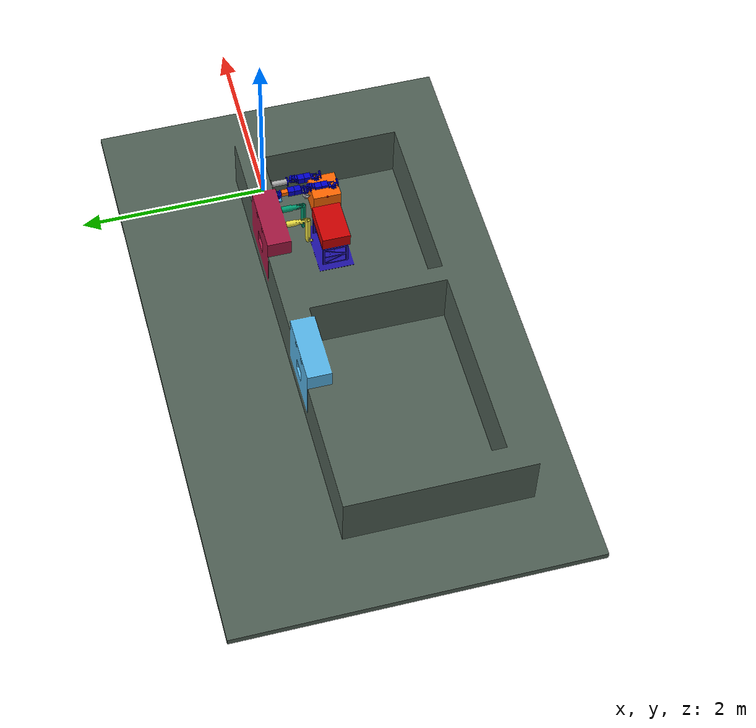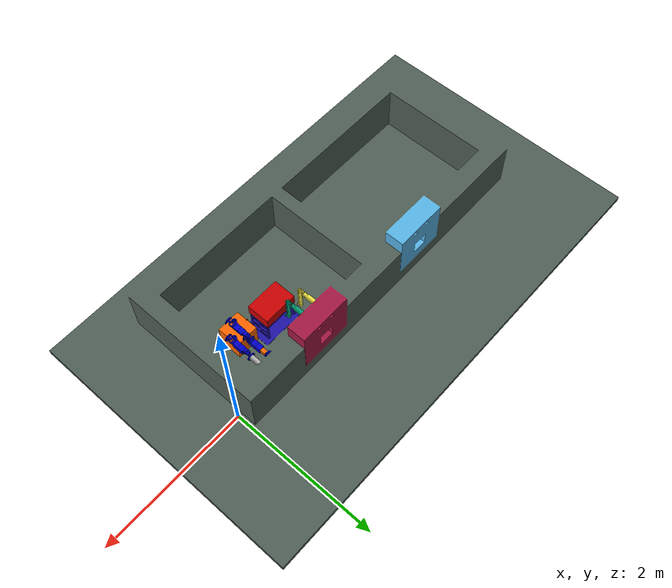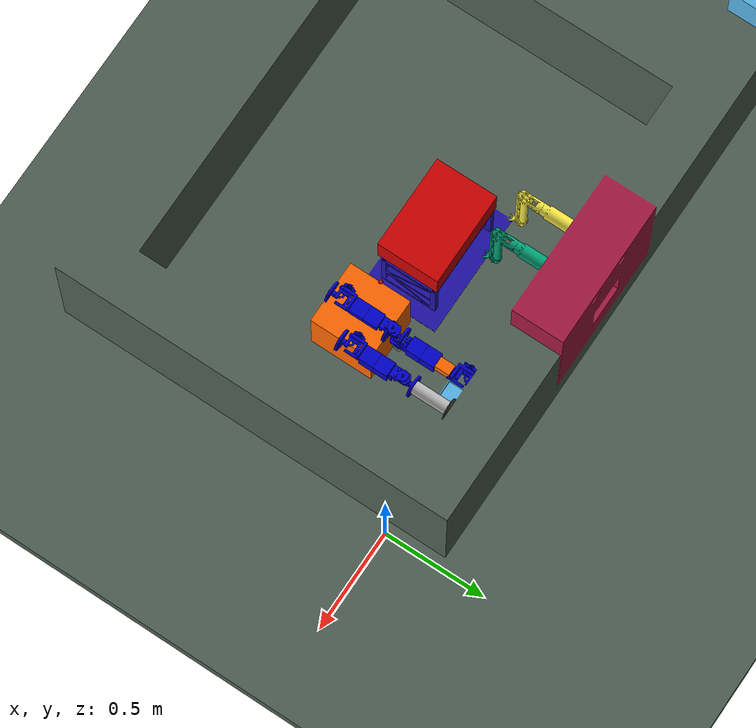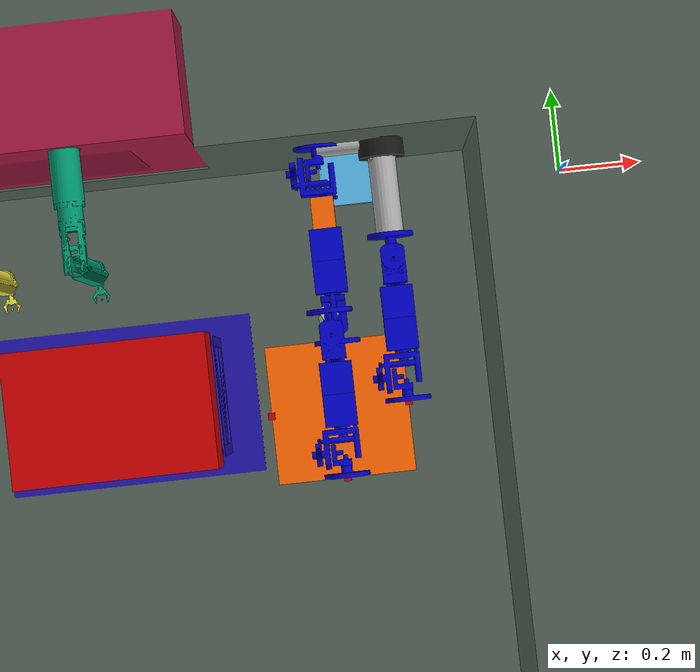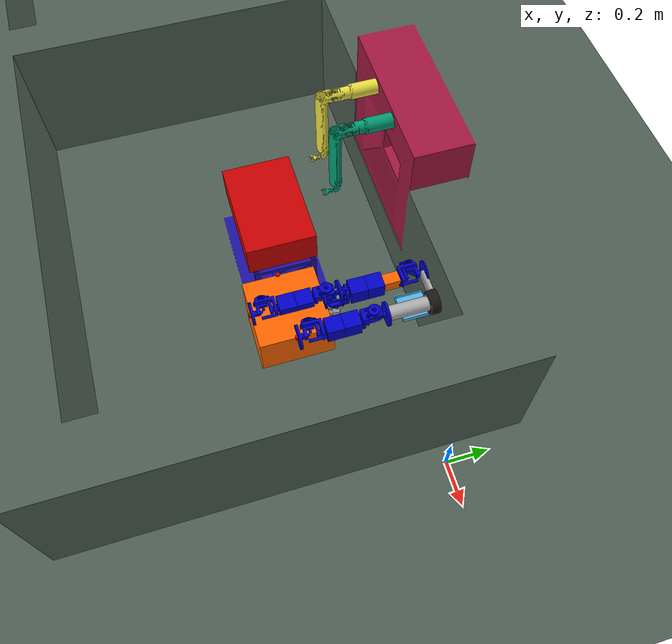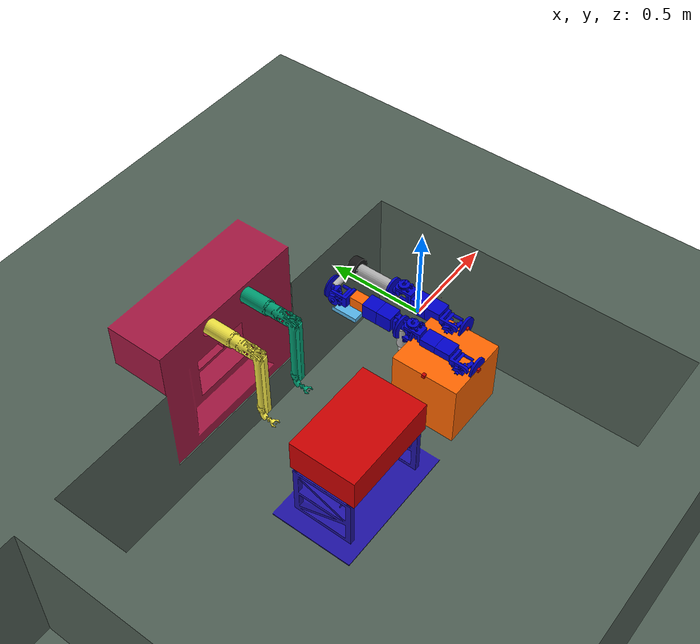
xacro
<?xml version="1.0"?>
<robot name="power" xmlns:xacro="http://www.ros.org/wiki/xacro">

  <!-- The following included files set up definitions of parts of the robot body -->

  <!-- power base -->
  <xacro:include filename="$(find mrs_description)/urdf/power_base/base.urdf.xacro" />
<xacro:include filename="$(find mrs_description)/urdf/power_base/ball_bearing.urdf.xacro" />
    <!-- constants for robot -->
<xacro:include filename="$(find mrs_description)/urdf/common_mrs.xacro" />
  <!-- simplified box collision geometry for base -->
<xacro:include filename="$(find
mrs_description)/urdf/power_base/sm_other.urdf.xacro" />
    <!-- Constants for robot -->
    <xacro:include filename="$(find mrs_description)/urdf/JM/jm.xacro" />
    <xacro:include filename="$(find mrs_description)/urdf/PCM/pcm.xacro" />
  <!-- Now we can start using the macros included above to define the actual power -->

<!--
THe Hotcell import
-->
  <link name="world" >
    <inertial>
        <mass value="0.1"/>
        <origin xyz="0 0 0" rpy="0 0 0"/>
        <inertia ixx="1.0" ixy="0.0" ixz="0.0" iyy="1.0" iyz="0.0" izz="1.0"/>
      </inertial>
      <visual>
        <origin xyz="0 0 0" rpy="0 0 0"/>
        <geometry>
          <box size="0.001 0.001 0.001"/>
        </geometry>
        <material name="Red"/>
      </visual>
      <collision>
        <origin xyz="0 0 0" rpy="0 0 0"/>
        <geometry>
          <box size="0.001 0.001 0.001"/>
        </geometry>
      </collision>
    </link>
  <link name="link_hotcell">
        <!--> Not necessary to declare inertia as the body is static<-->
      <collision name="collision_hotcell">
        <geometry>
            <mesh filename="package://mrs_gazebo/models/Hotcell/meshes/Hotcell.dae" scale="2.5 2.5 2.5"/>
        </geometry>
      </collision>
      <visual name="visual_hotcell">
        <geometry>
           <mesh filename="package://mrs_gazebo/models/Hotcell/meshes/Hotcell.dae" scale="2.5 2.5 2.5"/>
        </geometry>
      </visual>
    </link>
    <link name="link_manipulator_1">
        <!--> Not necessary to declare inertia as the body is static<-->

      <collision name="collision_man1">

        <geometry>
           <mesh filename="package://mrs_gazebo/models/MT200_nuc_manipulator/meshes/Manipulator.dae" scale="0.25 0.25 0.25"/>
        </geometry>
      </collision>
      <visual name="visual_man1">
        <geometry>
           <mesh filename="package://mrs_gazebo/models/MT200_nuc_manipulator/meshes/Manipulator.dae" scale="0.250 0.25 0.25"/>
        </geometry>
      </visual>
    </link>
     <link name="link_manipulator_2">
        <!--> Not necessary to declare inertia as the body is static<-->

      <collision name="collision_man2">
        <geometry>
           <mesh filename="package://mrs_gazebo/models/MT200_nuc_manipulator/meshes/Manipulator.dae" scale="0.25 0.25 0.25"/>
        </geometry>
      </collision>
      <visual name="visual_man2">
        <geometry>
           <mesh filename="package://mrs_gazebo/models/MT200_nuc_manipulator/meshes/Manipulator.dae" scale="0.25 0.25 0.25"/>
        </geometry>
      </visual>
    </link>

    <link name="manipable_box">

      <visual name="box_visual">
        <geometry>
            <box size="0.45 0.30 0.15"/>
        </geometry>
              <material name="red"/>
      </visual>
    </link>
<joint name="fixed_hotcell_joint" type="fixed">
    <origin xyz="0 0.05 0" rpy="0 0 0"/>
    <child link="link_hotcell"/>
    <parent link="world"/>
  </joint>
    <joint name="fixed_manipulator_joint1" type="fixed">
    <origin xyz="-1.13 -0.075 0.345" rpy="0 0 0"/>
    <child link="link_manipulator_1"/>
    <parent link="link_hotcell"/>
  </joint>
<joint name="fixed_manipulator_joint2" type="fixed">
    <origin xyz="-1.325 -0.075 0.345" rpy="0 0 0"/>
    <child link="link_manipulator_2"/>
    <parent link="link_hotcell"/>
  </joint>
   <joint name="fixed_maniBox_joint1" type="fixed">
    <origin xyz="-1.1 -0.525 0.6" rpy="0 0 0"/>
    <child link="manipable_box"/>
    <parent link="link_hotcell"/>
  </joint>
  <!-- inspection robot-->
  <!-- foot for arm-->

    <link name="robot1" >
    </link>
<joint name="fixed_robot1" type="fixed">
    <origin xyz="-0.6 -0.525 0.5" rpy="0 0 0"/>
    <child link="robot1"/>
    <parent link="world"/>
  </joint>
  <xacro:power_base name="base1" parent="robot1"/>

<!--
          Create the orientation joint

-->
<!--
ARM 1
-->
        <link name="arm1" />

<joint name="arm1_joint" type="revolute">
    <origin xyz="0 0 0" rpy="0 ${pi/2} 0"/>
    <child link="arm1"/>
    <parent link="2_base_camera_link"/>
     <limit lower="0" upper="3" effort="${max_effort}"
      velocity="${max_velocity}" />
  </joint>
  <link name="arm1_1" />
  <joint name="arm12_joint" type="revolute">
    <origin xyz="0 0 0" rpy="0 0 ${pi/2}"/>
    <child link="arm1_1"/>
    <parent link="arm1"/>
     <limit lower="${-pi}" upper="${pi}" effort="${max_effort}"
      velocity="${max_velocity}" />
  </joint>
    <xacro:JM1_armconnect name="JM" prefix="L2" instance="1"  parent="arm1_1" />
    <xacro:PcModule parent="L21_PCmodule" prefix="L22" instance="2" />
    <xacro:PcModule parent="1_L2_j2_link" prefix="L21" instance="1" />
    <xacro:PcModule_Prismatic_arm parent="L22_PCmodule" prefix="L2_prismatic" reflect="1" shift="0.07"/>
    <xacro:JM2 name="JM1" prefix="L2" instance="2"  parent="L2_prismatic_PCmodule" reflect="1" shift="0.035" shift2="0"/>

    <xacro:SMHand parent="2_L2_w1_link" prefix="L2" reflect="1" instance="1"/>

<!--
ARM 2
-->
        <link name="arm2" />

<joint name="arm2_joint" type="revolute">
    <origin xyz="0 0 0" rpy="0 ${pi/2} 0"/>
    <child link="arm2"/>
    <parent link="4_base_camera_link"/>
     <limit lower="${-pi}" upper="${pi}" effort="${max_effort}"
      velocity="${max_velocity}" />
  </joint>
  <link name="arm2_1" />
  <joint name="arm22_joint" type="revolute">
    <origin xyz="0 0 0" rpy="0 0 ${pi/2}"/>
    <child link="arm2_1"/>
    <parent link="arm2"/>
     <limit lower="${-pi}" upper="${pi}" effort="${max_effort}"
      velocity="${max_velocity}" />
  </joint>
    <link name="arm2_2" />
  <joint name="arm23_joint" type="revolute">
    <origin xyz="0 0 0" rpy="0 ${pi/2} 0"/>
    <child link="arm2_2"/>
    <parent link="arm2_1"/>
     <limit lower="${-pi}" upper="${pi}" effort="${max_effort}"
      velocity="${max_velocity}" />
  </joint>

    <xacro:JM1 name="JM" prefix="L1" instance="1"  parent="arm2_2" />
    <xacro:PcModule parent="L11_PCmodule" prefix="L12" instance="2" />
    <xacro:PcModule parent="1_L1_j2_link" prefix="L11" instance="1" />
    <xacro:JM2 name="JM1" prefix="L1" instance="2"  parent="L12_PCmodule" reflect="0" shift="0.035" shift2="1"/>
    <xacro:SMHand parent="2_L1_w1_link" prefix="L1" reflect="1" instance="2"/>

<!--
    ARM3 - parent {instance}_${prefix}_camera_link
-->
        <link name="arm3" />

<joint name="arm3_joint" type="revolute">
    <origin xyz="0 0 0" rpy="0 ${pi/2} 0"/>
    <child link="arm3"/>
    <parent link="1_base_camera_link"/>
     <limit lower="${-pi}" upper="${pi}" effort="${max_effort}"
      velocity="${max_velocity}" />
  </joint>
  <link name="arm3_1" />
  <joint name="arm32_joint" type="revolute">
    <origin xyz="0 0 0" rpy="0 0 ${pi/2}"/>
    <child link="arm3_1"/>
    <parent link="arm3"/>
     <limit lower="${-pi}" upper="${pi}" effort="${max_effort}"
      velocity="${max_velocity}" />
  </joint>
    <link name="arm3_2" />
  <joint name="arm33_joint" type="revolute">
    <origin xyz="0 0 0" rpy="0 ${pi/2} 0"/>
    <child link="arm3_2"/>
    <parent link="arm3_1"/>
     <limit lower="${-pi}" upper="${pi}" effort="${max_effort}"
      velocity="${max_velocity}" />
  </joint>

    <xacro:JM1 name="JM" prefix="L3" instance="1"  parent="arm3_2" />
    <xacro:PcModule parent="L31_PCmodule" prefix="L32" instance="2" />
    <xacro:PcModule parent="1_L3_j2_link" prefix="L31" instance="1" />
    <xacro:JM2 name="JM1" prefix="L3" instance="2"  parent="L32_PCmodule" reflect="0" shift="0.035" shift2="1"/>
     <xacro:SMRadprobe parent="2_L3_w1_link" prefix="L3" reflect="0" instance="1" />

  <gazebo>
    <plugin name="gazebo_ros_controller_manager" filename="libgazebo_ros_control.so">
      <robotNamespace>/mrs</robotNamespace>
    </plugin>

    <plugin name="object_controller" filename="libgazebo_ros_planar_move.so">
      <commandTopic>/mrs/cmd_vel</commandTopic>
      <odometryTopic>odom</odometryTopic>
      <odometryFrame>odom</odometryFrame>
      <odometryRate>20.0</odometryRate>
      <robotBaseFrame>base_footprint</robotBaseFrame>
    </plugin>

  </gazebo>

</robot>

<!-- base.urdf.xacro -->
<robot xmlns:xacro="http://www.ros.org/wiki/xacro">

  <property name="mass" value="22.0"/>
  <property name="p_baselen" value=".3" />
  <property name="p_basewidth" value=".3" />
  <property name="p_baseheight" value=".3" />

  <xacro:macro name="power_base" params="name parent">
  <link name="${name}_footprint">
    <inertial>
      <mass value="0.1"/>
      <origin xyz="0 0 ${-p_baseheight/2}" rpy="0 0 0"/>
      <inertia ixx="1.0" ixy="0.0" ixz="0.0" iyy="1.0" iyz="0.0" izz="1.0"/>
    </inertial>
    <visual>
      <origin xyz="-2.2 0 0" rpy="0 0 0"/>
      <geometry>
        <box size="0.001 0.001 0.001"/>
      </geometry>
      <material name="red"/>
    </visual>
    <collision>
      <origin xyz="0 0 ${-p_baseheight/2}" rpy="0 0 0"/>
      <geometry>
        <box size="0.001 0.001 0.001"/>
      </geometry>
    </collision>
  </link>
  <joint name="${name}_footprint" type="fixed">
    <origin xyz="0 0 0" rpy="0 0 0"/>
    <child link="${name}_footprint"/>
    <parent link="${parent}"/>
  </joint>
  <joint name="${name}_footprint_joint" type="fixed">
    <origin xyz="0 0 0" rpy="0 0 0"/>
    <child link="${name}_link_support"/>
    <parent link="${name}_footprint"/>
  </joint>

  <link name="${name}_link_support">
    <visual>
      <geometry>
        <box size="${p_baselen} ${p_basewidth} ${p_baseheight}" />
      </geometry>
      <material name="Orange"/>
    </visual>
    <collision>
      <geometry>
        <box size="${p_baselen-0.1} ${p_basewidth-0.05} ${p_baseheight-0.05}" />
      </geometry>
    </collision>
    <xacro:default_inertial mass="2" I_tensor="1"/>
  </link>

  <gazebo reference="${name}_link_support">
    <material>Gazebo/Orange</material>
  </gazebo>

<xacro:Ball_bearing mass="0.1" instance="1" dia="0.1" x="0.075" y="0.075" z="-0.12" parent="${name}_link_support"/>
<xacro:Ball_bearing mass="0.1" instance="2" dia="0.1" x="-0.075" y="0.075" z="-0.12" parent="${name}_link_support"/>
<xacro:Ball_bearing mass="0.1" instance="3" dia="0.1" x="0.075" y="-0.075" z="-0.12" parent="${name}_link_support"/>
<xacro:Ball_bearing mass="0.1" instance="4" dia="0.1" x="-0.075" y="-0.075" z="-0.12" parent="${name}_link_support"/>

<xacro:Camera parent="${name}_link_support" prefix="base" x="0.15" y="0" z="0.15" instance="1" />
<xacro:Camera parent="${name}_link_support" prefix="base" x="0" y="0.15" z="0.15" instance="2" />
<xacro:Camera parent="${name}_link_support" prefix="base" x="-0.15" y="0" z="0.15" instance="3" />
<xacro:Camera parent="${name}_link_support" prefix="base" x="0" y="-0.15" z="0.15" instance="4" />

<xacro:IMU parent="${name}_link_support" prefix="base" x="0.1" y="0.1" z="0.31"  />
  </xacro:macro>

</robot>

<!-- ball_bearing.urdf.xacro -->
<robot xmlns:xacro="http://www.ros.org/wiki/xacro">

		<!-- Constants for robot -->
	<xacro:include filename="$(find mrs_description)/urdf/common_mrs.xacro" />
  <!-- simplified box collision geometry for base -->

  <property name="mass" value="22.0"/>

 <macro name="Ball_bearing" params="mass instance dia x y z parent">
  <joint name="bearing_joint_${instance}" type="fixed">
    <origin rpy="0 0 0" xyz="${x} ${y} ${z}"/>
    <parent link="${parent}"/>
    <child link="bearing_link1_${instance}"/>
  </joint>
  <link name="bearing_link1_${instance}">
    <inertial>
      <mass value="${mass}"/>
      <origin xyz="0 0 0"/>
      <inertia ixx="${2/5*mass*dia/2*dia/2}" ixy="0" ixz="0" iyy="${2/5*mass*dia/2*dia/2}" iyz="0" izz="${2/5*mass*dia/2*dia/2}"/>
    </inertial>

  </link>
   <link name="bearing_link2_${instance}">
      <inertial>
        <mass value="${mass}"/>
        <origin xyz="0 0 0"/>
        <inertia ixx="${2/5*mass*dia/2*dia/2}" ixy="0" ixz="0" iyy="${2/5*mass*dia/2*dia/2}" iyz="0" izz="${2/5*mass*dia/2*dia/2}"/>
      </inertial>
      <visual>
      <origin rpy="0 0 0" xyz="0 0 0"/>
      <geometry>
        <sphere radius="${dia/2}"/>
      </geometry>
      <material name="Orange"/>
    </visual>
    <collision>
      <origin rpy="0 0 0" xyz="0 0 0"/>
      <geometry>
        <sphere radius="${dia/2}"/>
      </geometry>
      <contact_coefficients> <mu>0.0</mu> </contact_coefficients>
    </collision>
    </link>
      <joint name="bearing_joint2_${instance}" type="fixed">
    <origin rpy="0 0 0" xyz="0 0 0"/>
    <parent link="bearing_link1_${instance}"/>
    <child link="bearing_link2_${instance}"/>
  </joint>

  	<gazebo reference="bearing_link1_${instance}">
		<material>Gazebo/Black</material>
		<selfCollide>false</selfCollide>
	</gazebo>
	<gazebo reference="bearing_link2_${instance}">
		<material>Gazebo/Black</material>
		<selfCollide>false</selfCollide>
	</gazebo>

	</macro>
	</robot>

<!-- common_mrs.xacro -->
<robot name="mrs" xmlns:xacro="http://www.ros.org/wiki/xacro">

	<!-- Auxiliar Values -->
	<property name="pi" value="3.1415926535897931" />
	<property name="max_effort" value="20" />
	<property name="max_velocity" value="10" />

	<!-- Links Mass -->
	<property name="j1_mass" value="0.137" />
	<property name="j2_mass" value="0.01" />
	<property name="j3_mass" value="0.027" />
	<property name="w1_mass" value="0.089" />
	<property name="pc_mass" value="0.249" />

	<!-- Links COG -->
	<property name="j1_cog" value="-0.024 -0.021 0" />
	<property name="j2_cog" value="1.068e-4 0 4.22e-4" />
	<property name="j3_cog" value="-5.121e-4 0.014 -0.012" />
	<property name="w1_cog" value="-0.003 0 0" />
	<property name="pc_cog" value="-0.034 0 0" />

	<!-- Links Inertia -->
	<macro name="j1_inertia">
		<inertia ixx="1.043e-4" ixy="4.237e-5" ixz="8.843e-7"
		iyy="1.259e-5" iyz="-2.329e-8" izz="1.759e-4" />
	</macro>
	<macro name="j2_inertia">
		<inertia 	ixx="1.34e-6" 	ixy="2.119e-11"		ixz="7.365e-11"
							iyy="1.326e-6"	iyz="2.329e-12"
							izz="2.006e-6" />
	</macro>
	<macro name="j3_inertia">
		<inertia 	ixx="9.335e-6" ixy="1.198e-8" ixz="5.264e-9"
							iyy="5.505e-6" iyz="-2.699e-6"
							izz="6.39e-6" />
	</macro>
	<macro name="pc_inertia">
		<inertia 	ixx="4.35e-4" ixy="-5.575e-21" ixz="4.256e-21"
							iyy="4.82e-4" iyz="3.176e-21"
							izz="1.809e-4" />
	</macro>
	<macro name="w1_inertia">
		<inertia 	ixx="1.036e-4" ixy="0" ixz="0"
							iyy="5.359e-5" iyz="0"
							izz="5.359e-5" />
	</macro>
		<!-- Links orientation and origin -->
	<macro name="j1_ori">
      <origin xyz="0 0 0" rpy="${-pi/2} 0 0"/>
	</macro>
	<macro name="j2_ori">
		<origin xyz="0.044 0 0" rpy="0 0 0" />
	</macro>
	<macro name="j3_ori">
      <origin xyz="-0.5 0 0" rpy="0 0 ${-pi/2} "/>
	</macro>
	<macro name="pc_ori">
      <origin xyz="0.5 0 0" rpy="0 0 0"/>
	</macro>
	<macro name="w1_ori">
      <origin xyz="0 0 0" rpy="0 0 0 "/>
	</macro>

	<!-- MESH FILES -->
	<property name="j1_mesh" value="package://mrs_description/meshes/J1.dae" />
		<!--property name="j1_mesh" value="package://mrs_description/meshes/BASE.dae" /-->
	<property name="j2_mesh" value="package://mrs_description/meshes/J2.dae" />
	<property name="j3_mesh" value="package://mrs_description/meshes/J3.dae" />
	<property name="pc_mesh" value="package://mrs_description/meshes/Pc.dae" />
	<property name="w1_mesh" value="package://mrs_description/meshes/WR1.dae" />

	<!-- Link's Macro -->
	<macro name="create_link" params="name color mesh mass cog *inertia instance prefix">
		<link name="${instance}_${prefix}_${name}">
			<visual>
				<!--xacro:insert_block name="ori" /-->
				<geometry>
					<mesh filename="${mesh}" />
				</geometry>
				<material name="${color}" />
			</visual>
			<collision>
				<!--xacro:insert_block name="ori" /-->
				<geometry>
					<mesh filename="${mesh}" />
				</geometry>
			</collision>
			<inertial>
				<origin xyz="${cog}" rpy="0 0 0" />
				<mass value="${mass}" />
				<xacro:insert_block name="inertia" />
			</inertial>
		</link>
	</macro>

	<macro name="create_link_no_collision" params="name color mesh mass cog *inertia instance prefix">
		<link name="${instance}_${prefix}_${name}">
			<visual>
				<!--xacro:insert_block name="ori" /-->
				<geometry>
					<mesh filename="${mesh}" />
				</geometry>
				<material name="${color}" />
			</visual>
			<inertial>
				<origin xyz="${cog}" rpy="0 0 0" />
				<mass value="${mass}" />
				<xacro:insert_block name="inertia" />
			</inertial>
		</link>
	</macro>
	<!-- Transmission's Macro -->
	<macro name="simple_transmission" params="joint">
		<transmission name="${joint}tran">
			<type>transmission_interface/SimpleTransmission</type>
			<joint name="${joint}" />
			<actuator name="${joint}_motor">
				<hardwareInterface>EffortJointInterface</hardwareInterface>
				<mechanicalReduction>1</mechanicalReduction>
			</actuator>
		</transmission>
	</macro>

	<!-- Joints Dynamics -->
	<property name="j1_damping" value="0" />
	<property name="j2_damping" value="0" />
	<property name="j3_damping" value="0" />
	<property name="w1_damping" value="0" />

</robot>

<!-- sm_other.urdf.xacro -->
<robot xmlns:xacro="http://www.ros.org/wiki/xacro">

        <!-- Constants for robot -->
    <xacro:include filename="$(find mrs_description)/urdf/common_mrs.xacro" />
  <!-- simplified box collision geometry for base -->

  <property name="mass" value="22.0"/>

   <!-- Size of square 'camera' box -->
  <xacro:property name="camera_size" value="0.015" />

    <xacro:macro name="Camera" params="parent prefix x y z instance">
    <joint name="${instance}_${prefix}_camera_joint" type="fixed">
      <axis xyz="1 0 0" />
      <parent link="${parent}" />
      <child link="${instance}_${prefix}_camera_link" />
      <origin rpy="0 0 0" xyz="${x} ${y} ${z}" />
    </joint>
    <link name="${instance}_${prefix}_camera_link">
      <visual>
        <geometry>
            <box size="${camera_size} ${camera_size} ${camera_size}"/>
        </geometry>
        <origin rpy="0 0 0 " xyz="0 0 0" />
        <material name="Red"/>
      </visual>
      <collision>
        <origin rpy="0 0 0 " xyz="0 0 0" />
        <geometry>
            <box size="${camera_size} ${camera_size} ${camera_size}"/>
        </geometry>
      </collision>
      <inertial>
        <mass value="1e-5" />
        <origin xyz="0 0 0" rpy="0 0 0"/>
        <inertia ixx="1e-6" ixy="0" ixz="0" iyy="1e-6" iyz="0" izz="1e-6" />
      </inertial>
    </link>
    <gazebo reference="${instance}_${prefix}_camera_link">
      <mu1>0.2</mu1>
      <mu2>0.2</mu2>
      <material>Gazebo/Red</material>

      <sensor type="camera" name="${instance}_${prefix}_camera">
        <always_on>true</always_on>
        <update_rate>30.0</update_rate>
        <camera name="${instance}_${prefix}_camera">
          <horizontal_fov>1.3962634</horizontal_fov>
          <image>
            <width>800</width>
            <height>800</height>
            <format>R8G8B8</format>
          </image>
          <clip>
            <near>0.02</near>
            <far>300</far>
          </clip>
        </camera>
        <plugin name="camera_controller" filename="libgazebo_ros_camera.so">
          <cameraName>mrs/${instance}_${prefix}_camera</cameraName>
          <imageTopicName>image_raw</imageTopicName>
          <cameraInfoTopicName>camera_info</cameraInfoTopicName>
          <frameName>camera_link</frameName>
          <hackBaseline>0.07</hackBaseline>
          <distortionK1>0.0</distortionK1>
          <distortionK2>0.0</distortionK2>
          <distortionK3>0.0</distortionK3>
          <distortionT1>0.0</distortionT1>
          <distortionT2>0.0</distortionT2>
        </plugin>
      </sensor>
    </gazebo>

    </xacro:macro>

  <xacro:macro name="IMU" params="parent prefix x y z">
    <joint name="${prefix}_imu_joint" type="fixed">
      <axis xyz="1 0 0" />
      <parent link="${parent}" />
      <child link="${prefix}_imu_link" />
      <origin rpy="0 0 0" xyz="${x} ${y} ${z}" />
    </joint>
    <link name="${prefix}_imu_link">
      <visual>
        <geometry>
            <box size="0.001 0.001 0.001"/>
        </geometry>
        <origin rpy="0 0 0 " xyz="0 0 0" />
        <material name="Red"/>
      </visual>
      <collision>
        <origin rpy="0 0 0 " xyz="0 0 0" />
        <geometry>
            <box size="0.001 0.001 0.001"/>
        </geometry>
      </collision>
      <inertial>
        <mass value="1e-5" />
        <origin xyz="0 0 0" rpy="0 0 0"/>
        <inertia ixx="1e-6" ixy="0" ixz="0" iyy="1e-6" iyz="0" izz="1e-6" />
      </inertial>
    </link>
    <gazebo>
      <plugin filename="libgazebo_ros_imu.so" name="imu_en_ros">
        <bodyName>${prefix}_imu_link</bodyName>
        <robotNamespace>mrs</robotNamespace>
        <topicName>${prefix}_IMU</topicName>
      </plugin>
    </gazebo>

  </xacro:macro>

    <xacro:macro name="Laser" params="parent prefix x y z instance">
    <joint name="${instance}_${prefix}_laser_joint" type="fixed">
      <axis xyz="1 0 0" />
      <parent link="${parent}" />
      <child link="${instance}_${prefix}_laser_link" />
      <origin rpy="0 0 0" xyz="${x} ${y} ${z}" />
    </joint>
    <link name="${instance}_${prefix}_laser_link">
      <visual>
        <geometry>
            <box size="${camera_size} ${camera_size} ${camera_size}"/>
        </geometry>
        <origin rpy="0 0 0 " xyz="0 0 0" />
        <material name="Red"/>
      </visual>
      <collision>
        <origin rpy="0 0 0 " xyz="0 0 0" />
        <geometry>
            <mesh filename="package://mrs_description/meshes/hokuyo.dae"/>
        </geometry>
      </collision>
      <inertial>
        <mass value="1e-5" />
        <origin xyz="0 0 0" rpy="0 0 0"/>
        <inertia ixx="1e-6" ixy="0" ixz="0" iyy="1e-6" iyz="0" izz="1e-6" />
      </inertial>
    </link>
    <gazebo reference="${instance}_${prefix}_laser_link">
      <sensor type="gpu_ray" name="${instance}_${prefix}_lasersensor">
        <pose>0 0 0 0 0 0</pose>
        <visualize>false</visualize>
        <update_rate>40</update_rate>
        <ray>
          <scan>
            <horizontal>
              <samples>720</samples>
              <resolution>1</resolution>
              <min_angle>-1.570796</min_angle>
              <max_angle>1.570796</max_angle>
            </horizontal>
          </scan>
          <range>
            <min>0.10</min>
            <max>30.0</max>
            <resolution>0.01</resolution>
          </range>
        </ray>
        <plugin name="gazebo_ros_head_hokuyo_controller" filename="libgazebo_ros_gpu_laser.so">
          <topicName>/mrs/${instance}_${prefix}_lasersensor</topicName>
          <frameName>${instance}_${prefix}_laser_link</frameName>
        </plugin>
      </sensor>
    </gazebo>
    </xacro:macro>

    <xacro:macro name="SMRadprobe" params="parent prefix reflect instance">
        <joint name="${instance}_${prefix}_SMRadprobe_joint" type="fixed">
            <parent link="${parent}" />
            <child link="${instance}_${prefix}_rad_pole" />
            <origin rpy="0 ${-pi/2} 0" xyz="-0.1 0 0" />
        </joint>
        <link name="${instance}_${prefix}_rad_pole">
            <visual>
                <geometry>
                    <cylinder length="0.2" radius=".03" />
                </geometry>
                <origin rpy="0 0 0 " xyz="0 0 0" />
                <material name="Gray">
                    <color rgba=".7 .7 .7 1" />
                </material>
            </visual>
        </link>
        <joint name="${instance}_${prefix}_rad_joint" type="fixed">
            <axis xyz="0 0 1" />
            <origin rpy="0 0 0" xyz="0 0 0.1" />
            <parent link="${instance}_${prefix}_rad_pole" />
            <child link="${instance}_${prefix}_rad" />
        </joint>
        <link name="${instance}_${prefix}_rad">
            <visual>
                <origin rpy="0.0 0 0" xyz="0 0 0" />
                <geometry>
                    <cylinder length="0.05" radius=".05" />
                </geometry>
                                <material name="Black"/>
            </visual>
        </link>
    <gazebo reference="${instance}_${prefix}_rad_pole">
      <material>Gazebo/Red</material>
      <selfCollide>false</selfCollide>
    </gazebo>
    <gazebo reference="${instance}_${prefix}_rad">
      <material>Gazebo/Black</material>
      <selfCollide>false</selfCollide>
    </gazebo>
    </xacro:macro>

    <xacro:macro name="SMHand" params="parent prefix reflect instance">
        <joint name="${instance}_${prefix}_SMHand_joint" type="fixed">
            <parent link="${parent}" />
            <child link="${instance}_${prefix}_gripper_pole" />
            <origin rpy="0 0 0" xyz="0 0 0.05" />
        </joint>
        <link name="${instance}_${prefix}_gripper_pole">
            <visual>
                <origin rpy="0 0 0" xyz="0 0 0" />
                <geometry>
                    <cylinder length="0.1" radius=".02" />
                </geometry>
                <material name="Gray">
                    <color rgba=".7 .7 .7 1" />
                </material>
            </visual>
        </link>
        <joint name="${instance}_${prefix}_left_gripper_joint" type="revolute">
            <axis xyz="0 0 1" />
            <limit effort="1000.0" lower="0.0" upper="0.548" velocity="0.5" />
            <origin rpy="0 0 0" xyz="0 0.005 0.07" />
            <parent link="${instance}_${prefix}_gripper_pole" />
            <child link="${instance}_${prefix}_left_gripper" />
        </joint>
        <link name="${instance}_${prefix}_left_gripper">
            <visual>
                <origin rpy="0.0 0 0" xyz="0 0 0" />
                <geometry>
                    <mesh filename="package://pr2_description/meshes/gripper_v0/l_finger.dae" scale="0.5 0.5 0.5" />
                </geometry>
            </visual>
        </link>
        <joint name="${instance}_${prefix}_left_tip_joint" type="fixed">
            <parent link="${instance}_${prefix}_left_gripper" />
            <child link="${instance}_${prefix}_left_tip" />
        </joint>
        <link name="${instance}_${prefix}_left_tip">
            <visual>
                <origin rpy="0.0 0 0" xyz="0.045 0.00249 0" />
                <geometry>
                    <mesh
                        filename="package://pr2_description/meshes/gripper_v0/l_finger_tip.dae" scale="0.5 0.5 0.5"/>
                </geometry>
            </visual>
        </link>
        <joint name="${instance}_${prefix}_right_gripper_joint" type="revolute">
            <axis xyz="0 0 -1" />
            <limit effort="1000.0" lower="0.0" upper="0.548" velocity="0.5" />
            <origin rpy="0 0 0" xyz="0 -0.005 0.07" />
            <parent link="${instance}_${prefix}_gripper_pole" />
            <child link="${instance}_${prefix}_right_gripper" />
        </joint>
        <link name="${instance}_${prefix}_right_gripper">
            <visual>
                <origin rpy="-3.1415 0 0" xyz="0 0 0" />
                <geometry>
                    <mesh filename="package://pr2_description/meshes/gripper_v0/l_finger.dae" scale="0.5 0.5 0.5" />
                </geometry>
            </visual>
        </link>
        <joint name="${instance}_${prefix}_right_tip_joint" type="fixed">
            <parent link="${instance}_${prefix}_right_gripper" />
            <child link="${instance}_${prefix}_right_tip" />
        </joint>
        <link name="${instance}_${prefix}_right_tip">
            <visual>
                <origin rpy="-3.1415 0 0" xyz="0.045 0.00249 0" />
                <geometry>
                    <mesh
                        filename="package://pr2_description/meshes/gripper_v0/l_finger_tip.dae" scale="0.5 0.5 0.5" />
                </geometry>
            </visual>
        </link>
    <gazebo reference="${instance}_${prefix}_gripper_pole">
      <material>Gazebo/Grey</material>
      <selfCollide>false</selfCollide>
    </gazebo>
    <gazebo reference="${instance}_${prefix}_left_gripper">
      <material>Gazebo/Grey</material>
      <selfCollide>false</selfCollide>
    </gazebo>
    <gazebo reference="${instance}_${prefix}_left_tip">
      <material>Gazebo/Grey</material>
      <selfCollide>false</selfCollide>
    </gazebo>
    <gazebo reference="${instance}_${prefix}_right_gripper">
      <material>Gazebo/Grey</material>
      <selfCollide>false</selfCollide>
    </gazebo>
    </xacro:macro>

</robot>

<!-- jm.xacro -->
<robot name="mrs" xmlns:xacro="http://www.ros.org/wiki/xacro">

  <!-- Constants for robot -->
  <xacro:include filename="$(find mrs_description)/urdf/common_mrs.xacro" />
  <!-- Import all Gazebo-customization elements, including Gazebo colors -->
  <xacro:include filename="$(find mrs_description)/urdf/JM/jm.gazebo.xacro" />
  <!-- Import Rviz colors -->

  <xacro:include filename="$(find mrs_description)/urdf/materials.urdf.xacro" />

<macro name="JM1_armconnect" params="name prefix instance parent">
  <!-- Links -->
  <create_link name="j1_link" color="Blue" mesh="${j1_mesh}"
    cog="${j1_cog}" mass="${j1_mass}" instance="${instance}" prefix="${prefix}">
    <j1_inertia />
  </create_link>

  <create_link_no_collision name="j2_link" color="Blue" mesh="${j2_mesh}"
    cog="${j2_cog}" mass="${j2_mass}" instance="${instance}" prefix="${prefix}">
    <j2_inertia />
  </create_link_no_collision>
  <create_link_no_collision name="j3_link" color="Blue" mesh="${j3_mesh}"
    cog="${j3_cog}" mass="${j3_mass}" instance="${instance}" prefix="${prefix}">
    <j3_inertia />
  </create_link_no_collision>
  <create_link name="w1_link" color="Blue" mesh="${w1_mesh}"
    cog="${w1_cog}" mass="${w1_mass}" instance="${instance}" prefix="${prefix}">
    <w1_inertia />
  </create_link>

  <!-- Joints -->

  <joint name="${instance}_${prefix}_j3" type="continuous">
    <child link="${instance}_${prefix}_w1_link" />
    <parent link="${parent}" />
    <axis xyz="0 0 1 " />
    <origin xyz="0 0 0.01" rpy="${-pi/2} 0 0" />
    <limit lower="${-pi/2}" upper="${pi/2}" effort="${max_effort}"
      velocity="${max_velocity}" />
    <dynamics damping="${j3_damping}" />
 </joint>
  <joint name="${instance}_${prefix}_j2_fixed" type="fixed">
    <child link="${instance}_${prefix}_j3_link" />
    <parent link="${instance}_${prefix}_w1_link" />
    <origin xyz="0.045 0 0" rpy="0 0 ${pi/2}" />
  </joint>

  <joint name="${instance}_${prefix}_j2" type="revolute">
    <child link="${instance}_${prefix}_j1_link" />
    <parent link="${instance}_${prefix}_j3_link" />
    <axis xyz="1 0 0 " />
    <origin xyz="0 0 0" rpy="0 ${-pi/2} 0" />
    <limit lower="${-pi/2}" upper="${pi/2}" effort="${max_effort}"
      velocity="${max_velocity}" />
    <dynamics damping="${j2_damping}" />
  </joint>

  <joint name="${instance}_${prefix}_j1" type="continuous">
    <child link="${instance}_${prefix}_j2_link" />
    <parent link="${instance}_${prefix}_j1_link" />
    <axis xyz="0 0 1 " />
    <origin xyz="0 -0.058 0" rpy="${pi/2} 0 0" />
    <limit lower="${-pi/2}" upper="${pi/2}" effort="${max_effort}"
      velocity="${max_velocity}" />
    <dynamics damping="${j3_damping}" />
  </joint>

    <!-- Transmissions -->
  <simple_transmission joint="${instance}_${prefix}_j1" />
  <simple_transmission joint="${instance}_${prefix}_j2" />
  <simple_transmission joint="${instance}_${prefix}_j3" />

    <!-- Gazebo  -->
  <xacro:JMG name="${name}_gazebo" prefix="${prefix}" instance="${instance}" />

  </macro>

<macro name="JM1" params="name prefix instance parent">
  <!-- Links -->
  <create_link name="j1_link" color="Blue" mesh="${j1_mesh}"
    cog="${j1_cog}" mass="${j1_mass}" instance="${instance}" prefix="${prefix}">
    <j1_inertia />
  </create_link>

  <create_link_no_collision name="j2_link" color="Blue" mesh="${j2_mesh}"
    cog="${j2_cog}" mass="${j2_mass}" instance="${instance}" prefix="${prefix}">
    <j2_inertia />
  </create_link_no_collision>
  <create_link_no_collision name="j3_link" color="Blue" mesh="${j3_mesh}"
    cog="${j3_cog}" mass="${j3_mass}" instance="${instance}" prefix="${prefix}">
    <j3_inertia />
  </create_link_no_collision>
  <create_link name="w1_link" color="Blue" mesh="${w1_mesh}"
    cog="${w1_cog}" mass="${w1_mass}" instance="${instance}" prefix="${prefix}">
    <w1_inertia />
  </create_link>

  <!-- Joints -->

    <joint name="${instance}_${prefix}_j3" type="fixed">
    <child link="${instance}_${prefix}_w1_link" />
    <parent link="${parent}" />
    <axis xyz="0 0 1 " />
    <origin xyz="0 0 0.01" rpy="0 ${-pi/2} 0" />
  </joint>

  <joint name="${instance}_${prefix}_j2_fixed" type="fixed">
    <child link="${instance}_${prefix}_j3_link" />
    <parent link="${instance}_${prefix}_w1_link" />
    <origin xyz="0.045 0 0" rpy="0 0 ${pi/2}" />
  </joint>

  <joint name="${instance}_${prefix}_j2" type="revolute">
    <child link="${instance}_${prefix}_j1_link" />
    <parent link="${instance}_${prefix}_j3_link" />
    <axis xyz="1 0 0 " />
    <origin xyz="0 0 0" rpy="0 ${-pi/2} 0" />
    <limit lower="${-pi/2}" upper="${pi/2}" effort="${max_effort}"
      velocity="${max_velocity}" />
    <dynamics damping="${j2_damping}" />
  </joint>

  <joint name="${instance}_${prefix}_j1" type="revolute">
    <child link="${instance}_${prefix}_j2_link" />
    <parent link="${instance}_${prefix}_j1_link" />
    <axis xyz="0 0 1 " />
    <origin xyz="0 -0.058 0" rpy="${pi/2} 0 0" />
    <limit lower="${-pi/2}" upper="${pi/2}" effort="${max_effort}"
      velocity="${max_velocity}" />
    <dynamics damping="${j3_damping}" />
  </joint>

    <!-- Transmissions -->
  <simple_transmission joint="${instance}_${prefix}_j1" />
  <simple_transmission joint="${instance}_${prefix}_j2" />

    <!-- Gazebo  -->
  <xacro:JMG name="${name}_gazebo" prefix="${prefix}" instance="${instance}" />

  </macro>

<macro name="JM1_kinematic" params="name prefix instance parent">
  <!-- Links -->
  <create_link name="j1_link" color="Grey" mesh="${j1_mesh}"
    cog="${j1_cog}" mass="${j1_mass}" instance="${instance}" prefix="${prefix}">
    <j1_inertia />
  </create_link>

  <link name="1_L1_j2_link">
      <visual>
        <geometry>
          <cylinder length="0.15" radius=".03" />
        </geometry>
        <origin rpy="0 0 0 " xyz="0 0 0" />
        <material name="Gray">
          <color rgba=".7 .7 .7 1" />
        </material>
      </visual>
      <collision>
        <geometry>
          <cylinder length="0.06" radius=".01" />
        </geometry>
      </collision>
    </link>
  <create_link name="w1_link" color="Black" mesh="${w1_mesh}"
    cog="${w1_cog}" mass="${w1_mass}" instance="${instance}" prefix="${prefix}">
    <w1_inertia />
  </create_link>

  <!-- Joints -->

  <joint name="${instance}_${prefix}_j3" type="revolute">
    <child link="${instance}_${prefix}_w1_link" />
    <parent link="${parent}" />
    <axis xyz="1 0 0 " />
    <origin xyz="0 0 0.01" rpy="0 ${-pi/2} 0" />
    <limit lower="${-pi}" upper="${pi}" effort="${max_effort}"
      velocity="${max_velocity}" />
    <dynamics damping="${j3_damping}" />

  </joint>

  <joint name="${instance}_${prefix}_j2" type="revolute">
    <child link="${instance}_${prefix}_j1_link" />
    <parent link="${instance}_${prefix}_w1_link" />
    <axis xyz="1 0 0 " />
    <origin xyz="0.045 0 0" rpy="0 ${pi/2} ${pi/2}" />
    <limit lower="${-pi/2}" upper="${pi/2}" effort="${max_effort}"
      velocity="${max_velocity}" />
    <dynamics damping="${j2_damping}" />
  </joint>

  <joint name="${instance}_${prefix}_j1" type="revolute">
    <child link="${instance}_${prefix}_j2_link" />
    <parent link="${instance}_${prefix}_j1_link" />
    <axis xyz="0 1 0 " />
    <origin xyz="0 -0.125 0" rpy="${pi/2} 0 0" />
    <limit lower="${-pi/2}" upper="${pi/2}" effort="${max_effort}"
      velocity="${max_velocity}" />
    <dynamics damping="${j3_damping}" />
  </joint>

    <!-- Transmissions -->
  <simple_transmission joint="${instance}_${prefix}_j1" />
  <simple_transmission joint="${instance}_${prefix}_j2" />
  <simple_transmission joint="${instance}_${prefix}_j3" />

    <!-- Gazebo  -->
  <xacro:JMG name="${name}_gazebo" prefix="${prefix}" instance="${instance}" />
  </macro>
<macro name="JM2" params="name prefix instance parent reflect shift shift2">
  <create_link name="j1_link" color="Blue" mesh="${j1_mesh}"
    cog="${j1_cog}" mass="${j1_mass}" instance="${instance}" prefix="${prefix}">
    <j1_inertia />
  </create_link>

  <create_link_no_collision name="j2_link" color="Blue" mesh="${j2_mesh}"
    cog="${j2_cog}" mass="${j2_mass}" instance="${instance}" prefix="${prefix}">
    <j2_inertia />
  </create_link_no_collision>
  <create_link_no_collision name="j3_link" color="Blue" mesh="${j3_mesh}"
    cog="${j3_cog}" mass="${j3_mass}" instance="${instance}" prefix="${prefix}">
    <j3_inertia />
  </create_link_no_collision>
  <create_link name="w1_link" color="Blue" mesh="${w1_mesh}"
    cog="${w1_cog}" mass="${w1_mass}" instance="${instance}" prefix="${prefix}">
    <w1_inertia />
  </create_link>

  <joint name="${instance}_${prefix}_j3" type="revolute">
    <child link="${instance}_${prefix}_w1_link" />
    <parent link="${instance}_${prefix}_j3_link" />
    <axis xyz="1 0 0" />
    <origin xyz="0 0.05 0" rpy="0 0 ${-pi/2}" />
    <limit lower="${-pi}" upper="${pi}" effort="${max_effort}"
      velocity="${max_velocity}" />
    <dynamics damping="${j1_damping}" />
  </joint>

  <joint name="${instance}_${prefix}_j2" type="revolute">
    <child link="${instance}_${prefix}_j3_link" />
    <parent link="${instance}_${prefix}_j1_link" />
    <axis xyz="0 0 1 " />
    <origin xyz="0 0 0" rpy="0 ${pi/2} 0" />
    <limit lower="${-pi/2}" upper="${pi/2}" effort="${max_effort}"
      velocity="${max_velocity}" />
    <dynamics damping="${j2_damping}" />
  </joint>

  <joint name="${instance}_${prefix}_j2_fixed" type="fixed">
    <child link="${instance}_${prefix}_j1_link" />
    <parent link="${instance}_${prefix}_j2_link" />
    <axis xyz="1 0 0 " />
    <origin xyz="0 0 0.058" rpy="${pi/2} 0 ${pi/2}" />
  </joint>

  <joint name="${instance}_${prefix}_j1" type="revolute">
    <child link="${instance}_${prefix}_j2_link" />
    <parent link="${parent}" />
    <axis xyz="0 0 1 " />
    <origin xyz="${shift*reflect} 0 ${shift*shift2}" rpy="0 ${reflect*pi/2} 0" />
    <limit lower="0" upper="${pi}" effort="${max_effort}"
      velocity="${max_velocity}" />
    <dynamics damping="${j3_damping}" />
  </joint>
    <!-- Transmissions -->
  <simple_transmission joint="${instance}_${prefix}_j1" />
  <simple_transmission joint="${instance}_${prefix}_j2" />
  <simple_transmission joint="${instance}_${prefix}_j3" />

  <!-- Gazebo  -->
  <xacro:JMG name="${name}_gazebo" prefix="${prefix}" instance="${instance}" />
  </macro>

<macro name="JM2_3DOF_kinematic" params="name prefix instance parent reflect shift shift2">
  <create_link name="j1_link" color="Grey" mesh="${j1_mesh}"
    cog="${j1_cog}" mass="${j1_mass}" instance="${instance}" prefix="${prefix}">
    <j1_inertia />
  </create_link>

  <create_link name="j3_link" color="Grey" mesh="${j3_mesh}"
    cog="${j3_cog}" mass="${j3_mass}" instance="${instance}" prefix="${prefix}">
    <j3_inertia />
  </create_link>

  <create_link name="w1_link" color="Black" mesh="${w1_mesh}"
    cog="${w1_cog}" mass="${w1_mass}" instance="${instance}" prefix="${prefix}">
    <w1_inertia />
  </create_link>

  <joint name="${instance}_${prefix}_j3" type="revolute">
    <child link="${instance}_${prefix}_w1_link" />
    <parent link="${instance}_${prefix}_j3_link" />
    <axis xyz="1 0 0" />
    <origin xyz="0 0.055 0" rpy="0 0 ${-pi/2}" />
    <limit lower="${-pi}" upper="${pi}" effort="${max_effort}"
      velocity="${max_velocity}" />
    <dynamics damping="${j1_damping}" />
  </joint>

  <joint name="${instance}_${prefix}_j2" type="revolute">
    <child link="${instance}_${prefix}_j3_link" />
    <parent link="${instance}_${prefix}_j1_link" />
    <axis xyz="0 0 1" />
    <origin xyz="0 0.02 0" rpy="0 ${pi/2} 0" />
    <limit lower="${-pi/3}" upper="${pi/3}" effort="${max_effort}"
      velocity="${max_velocity}" />
    <dynamics damping="${j2_damping}" />
  </joint>

  <joint name="${instance}_${prefix}_j1" type="continuous">
    <child link="${instance}_${prefix}_j1_link" />
    <parent link="${parent}" />
    <axis xyz="0 1 0" />
    <origin xyz="0 0 ${shift}" rpy=" ${pi/2} 0 0" />
  </joint>
    <!-- Transmissions -->
  <simple_transmission joint="${instance}_${prefix}_j1" />
  <simple_transmission joint="${instance}_${prefix}_j2" />
  <simple_transmission joint="${instance}_${prefix}_j3" />

  <!-- Gazebo  -->
  <xacro:JMG name="${name}_gazebo" prefix="${prefix}" instance="${instance}" />
  </macro>
<macro name="JM2_kinematic" params="name prefix instance parent reflect shift shift2">

  <create_link name="j1_link" color="Blue" mesh="${j1_mesh}"
    cog="${j1_cog}" mass="${j1_mass}" instance="${instance}" prefix="${prefix}">
    <j1_inertia />
  </create_link>

  <create_link name="j3_link" color="Blue" mesh="${j3_mesh}"
    cog="${j3_cog}" mass="${j3_mass}" instance="${instance}" prefix="${prefix}">
    <j3_inertia />
  </create_link>

  <joint name="${instance}_${prefix}_j3" type="revolute">
    <child link="${instance}_${prefix}_j3_link" />
    <parent link="${instance}_${prefix}_j1_link" />
    <axis xyz="0 0 1" />
    <origin xyz="0 0.01 0" rpy="0 ${pi/2} 0" />
    <limit lower="${-pi/2}" upper="${pi/2}" effort="${max_effort}"
      velocity="${max_velocity}" />
    <dynamics damping="${j1_damping}" />
  </joint>

  <joint name="${instance}_${prefix}_j1" type="revolute">
    <child link="${instance}_${prefix}_j1_link" />
    <parent link="${parent}" />
    <axis xyz="0 1 0 " />
    <origin xyz="${shift} 0 ${shift*shift2}" rpy=" 0 0 ${-pi/2}" />
    <limit lower="0" upper="${pi}" effort="${max_effort}"
      velocity="${max_velocity}" />
    <dynamics damping="${j3_damping}" />
  </joint>
    <!-- Transmissions -->
  <simple_transmission joint="${instance}_${prefix}_j1" />
  <simple_transmission joint="${instance}_${prefix}_j2" />
  <simple_transmission joint="${instance}_${prefix}_j3" />

  <!-- Gazebo  -->
  <xacro:JMG name="${name}_gazebo" prefix="${prefix}" instance="${instance}" />
  </macro>

<macro name="JM3" params="name prefix instance parent reflect shift">
  <create_link name="j1_link" color="Blue" mesh="${j1_mesh}"
    cog="${j1_cog}" mass="${j1_mass}" instance="${instance}" prefix="${prefix}">
    <j1_inertia />
  </create_link>

  <create_link_no_collision name="j2_link" color="Blue" mesh="${j2_mesh}"
    cog="${j2_cog}" mass="${j2_mass}" instance="${instance}" prefix="${prefix}">
    <j2_inertia />
  </create_link_no_collision>
  <create_link_no_collision name="j3_link" color="Blue" mesh="${j3_mesh}"
    cog="${j3_cog}" mass="${j3_mass}" instance="${instance}" prefix="${prefix}">
    <j3_inertia />
  </create_link_no_collision>
  <create_link name="w1_link" color="Blue" mesh="${w1_mesh}"
    cog="${w1_cog}" mass="${w1_mass}" instance="${instance}" prefix="${prefix}">
    <w1_inertia />
  </create_link>

  <joint name="${instance}_${prefix}_j3" type="continuous">
    <child link="${instance}_${prefix}_w1_link" />
    <parent link="${instance}_${prefix}_j3_link" />
    <axis xyz="1 0 0" />
    <origin xyz="0 0.05 0" rpy="0 0 ${-pi/2}" />
  </joint>

  <joint name="${instance}_${prefix}_j2" type="revolute">
    <child link="${instance}_${prefix}_j3_link" />
    <parent link="${instance}_${prefix}_j1_link" />
    <axis xyz="0 0 1 " />
    <origin xyz="0 0 0" rpy="0 ${pi/2} 0" />
    <limit lower="${-pi/2}" upper="${pi/2}" effort="${max_effort}"
      velocity="${max_velocity}" />
    <dynamics damping="${j2_damping}" />
  </joint>

  <joint name="${instance}_${prefix}_j2_fixed" type="fixed">
    <child link="${instance}_${prefix}_j1_link" />
    <parent link="${instance}_${prefix}_j2_link" />
    <axis xyz="1 0 0 " />
    <origin xyz="0 0 0.058" rpy="${pi/2} 0 ${pi/2}" />
  </joint>

  <joint name="${instance}_${prefix}_j1" type="continuous">
    <child link="${instance}_${prefix}_j2_link" />
    <parent link="${parent}" />

    <origin xyz="${shift} 0 0" rpy="0 ${pi/2} 0" />
  </joint>
    <!-- Transmissions -->
  <simple_transmission joint="${instance}_${prefix}_j1" />
  <simple_transmission joint="${instance}_${prefix}_j2" />
  <simple_transmission joint="${instance}_${prefix}_j3" />

  <!-- Gazebo  -->
  <xacro:JMG name="${name}_gazebo" prefix="${prefix}" instance="${instance}" />
  </macro>

<macro name="JM3_solid" params="name prefix instance parent reflect shift">
  <create_link name="j1_link" color="Blue" mesh="${j1_mesh}"
    cog="${j1_cog}" mass="${j1_mass}" instance="${instance}" prefix="${prefix}">
    <j1_inertia />
  </create_link>

  <create_link_no_collision name="j2_link" color="Blue" mesh="${j2_mesh}"
    cog="${j2_cog}" mass="${j2_mass}" instance="${instance}" prefix="${prefix}">
    <j2_inertia />
  </create_link_no_collision>
  <create_link_no_collision name="j3_link" color="Blue" mesh="${j3_mesh}"
    cog="${j3_cog}" mass="${j3_mass}" instance="${instance}" prefix="${prefix}">
    <j3_inertia />
  </create_link_no_collision>
  <create_link name="w1_link" color="Blue" mesh="${w1_mesh}"
    cog="${w1_cog}" mass="${w1_mass}" instance="${instance}" prefix="${prefix}">
    <w1_inertia />
  </create_link>

  <joint name="${instance}_${prefix}_j3" type="fixed">
    <child link="${instance}_${prefix}_w1_link" />
    <parent link="${instance}_${prefix}_j3_link" />
    <axis xyz="1 0 0" />
    <origin xyz="0 0.05 0" rpy="0 0 ${-pi/2}" />
  </joint>

  <joint name="${instance}_${prefix}_j2" type="fixed">
    <child link="${instance}_${prefix}_j3_link" />
    <parent link="${instance}_${prefix}_j1_link" />
    <axis xyz="0 0 1 " />
    <origin xyz="0 0 0" rpy="0 ${pi/2} 0" />
  </joint>

  <joint name="${instance}_${prefix}_j2_fixed" type="fixed">
    <child link="${instance}_${prefix}_j1_link" />
    <parent link="${instance}_${prefix}_j2_link" />
    <axis xyz="1 0 0 " />
    <origin xyz="0 0 0.058" rpy="${pi/2} 0 ${pi/2}" />
  </joint>

  <joint name="${instance}_${prefix}_j1" type="fixed">
    <child link="${instance}_${prefix}_j2_link" />
    <parent link="${parent}" />

    <origin xyz="${shift} 0 0" rpy="0 ${pi/2} 0" />
  </joint>
    <!-- Transmissions -->

  <!-- Gazebo  -->
  <xacro:JMG name="${name}_gazebo" prefix="${prefix}" instance="${instance}" />
  </macro>

</robot>

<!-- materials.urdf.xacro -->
<robot>

  <material name="Blue">
    <color rgba="0.0 0.0 0.8 1.0"/>
  </material>

  <material name="Grey">
    <color rgba="0.7 0.7 0.7 1.0"/>
  </material>

  <material name="Grey2">
    <color rgba="0.9 0.9 0.9 1.0"/>
  </material>

  <material name="Red">
    <color rgba="0.8 0.0 0.0 1.0"/>
  </material>

  <material name="White">
    <color rgba="1.0 1.0 1.0 1.0"/>
  </material>

  <material name="Black">
    <color rgba="0.1 0.1 0.1 1.0"/>
  </material>

  <material name="LightGrey">
    <color rgba="0.6 0.6 0.6 1.0"/>
  </material>

    <material name="Orange">
    <color rgba="1.0 0.4 0.0 1.0"/>
  </material>

  <material name="DarkGrey">
    <color rgba="0.3 0.3 0.3 1.0"/>
  </material>

  <material name="Green">
    <color rgba="0.0 1.0 0.0 1.0"/>
  </material>

  <material name="Caster">
    <texture filename="package://pr2_description/materials/textures/pr2_caster_texture.png" />
  </material>

  <material name="Wheel_l">
    <texture filename="package://pr2_description/materials/textures/pr2_wheel_left.png" />
  </material>

  <material name="Wheel_r">
    <texture filename="package://pr2_description/materials/textures/pr2_wheel_right.png" />
  </material>

  <material name="RollLinks">
    <texture filename="package://pr2_description/materials/textures/pr2_wheel_left.png" />
  </material>

</robot>

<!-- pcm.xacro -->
<robot name="mrs" xmlns:xacro="http://www.ros.org/wiki/xacro">

    <!-- Constants for robot -->
    <xacro:include filename="$(find mrs_description)/urdf/common_mrs.xacro" />
    <!-- Import all Gazebo-customization elements, including Gazebo colors -->
    <xacro:include filename="$(find mrs_description)/urdf/PCM/pcm.gazebo.xacro" />
    <!-- Import Rviz colors -->
    <xacro:include filename="$(find mrs_description)/urdf/materials.xacro" />

    <xacro:macro name="default_inertial" params="mass I_tensor">
        <inertial>
            <mass value="${mass}" />
<!--
            Inertia of a cuboid - ml2/6
-->
            <inertia ixx="${I_tensor*1.0}" ixy="0.0" ixz="0.0" iyy="${I_tensor*1.0}" iyz="0.0"
                izz="${I_tensor*1.0}" />
        </inertial>
    </xacro:macro>

    <xacro:macro name="PcModule_flex" params="parent prefix instance shift">
        <link name="${prefix}_PCmodule">
            <visual>
                <geometry>
                    <box size="0.07 0.07 0.07" />
                </geometry>
                <material name="Blue">
                </material>
            </visual>
            <collision>
                <geometry>
                    <box size="0.07 0.07 0.04" />
                </geometry>
            </collision>
            <xacro:default_inertial mass="0.15" I_tensor="8.166e-4"/>
        </link>
        <joint name="${instance}_${prefix}_mbase_jointW1" type="fixed">
            <origin xyz="0 ${shift*instance*0.035} 0" rpy=" ${-pi/2} 0 0" />
            <child link="${prefix}_PCmodule" />
            <parent link="${parent}" />
        </joint>

    <!-- Gazebo  -->
    <xacro:PCMG name="${prefix}_pcm_gazebo" prefix="${prefix}" instance="${instance}" />
    </xacro:macro>

    <xacro:macro name="PcModule" params="parent prefix instance">
        <link name="${prefix}_PCmodule">
            <visual>
                <geometry>
                    <box size="0.07 0.07 0.07" />
                </geometry>
                <material name="Blue">
                </material>
            </visual>
            <collision>
                <geometry>
                    <box size="0.07 0.07 0.04" />
                </geometry>
            </collision>
            <xacro:default_inertial mass="0.15" I_tensor="8.166e-4"/>
        </link>
        <joint name="${instance}_${prefix}_mbase_jointW1" type="fixed">
            <origin xyz="0 0 ${instance*0.035}" rpy="0 0 0" />
            <child link="${prefix}_PCmodule" />
            <parent link="${parent}" />
        </joint>

    <!-- Gazebo  -->
    <xacro:PCMG name="${prefix}_pcm_gazebo" prefix="${prefix}" instance="${instance}" />
    </xacro:macro>

    <xacro:macro name="PcModule_Prismatic" params="parent prefix reflect">
        <link name="${prefix}_PCmodule">
            <visual>
                <geometry>
                    <box size="0.07 0.05 0.05" />
                </geometry>
                <material name="Orange">
                </material>
            </visual>
            <xacro:default_inertial mass="0.15" I_tensor="8.166e-4"/>
        </link>
        <joint name="${prefix}_mbase_jointW1" type="prismatic">
            <origin xyz="0 0 ${reflect*0.035}" rpy="0 ${-reflect*pi/2} 0" />
            <child link="${prefix}_PCmodule" />
            <parent link="${parent}" />
            <limit lower="0" upper="0.03" effort="${max_effort}"
            velocity="${max_velocity}" />
        </joint>
    <simple_transmission joint="${prefix}_mbase_jointW1" />
    <!-- Gazebo  -->
    <xacro:PCMG name="${prefix}_pcm_gazebo" prefix="${prefix}" instance="${reflect}" />
    </xacro:macro>

    <xacro:macro name="PcModule_Prismatic_arm" params="parent prefix reflect shift">
        <link name="${prefix}_PCmodule">
            <visual>
                <geometry>
                    <box size="0.07 0.05 0.05" />
                </geometry>
                <material name="Orange">
                </material>
            </visual>
            <xacro:default_inertial mass="0.15" I_tensor="8.166e-4"/>
        </link>
        <joint name="${prefix}_mbase_jointW1" type="prismatic">
            <origin xyz="0 0 ${reflect*shift}" rpy="0 ${-reflect*pi/2} 0" />
            <child link="${prefix}_PCmodule" />
            <parent link="${parent}" />
            <limit lower="0" upper="0.07" effort="${max_effort}"
            velocity="${max_velocity}" />
        </joint>
    <simple_transmission joint="${prefix}_mbase_jointW1" />
    <!-- Gazebo  -->
    <xacro:PCMG name="${prefix}_pcm_gazebo" prefix="${prefix}" instance="${reflect}" />
    </xacro:macro>

    <xacro:macro name="PcModule_Prismatic" params="parent prefix reflect">
        <link name="${prefix}_PCmodule">
            <visual>
                <geometry>
                    <box size="0.07 0.05 0.05" />
                </geometry>
                <material name="Orange">
                </material>
            </visual>
            <xacro:default_inertial mass="0.15" I_tensor="8.166e-4"/>
        </link>
        <joint name="${prefix}_mbase_jointW1" type="prismatic">
            <origin xyz="0 0 ${reflect*0.035}" rpy="0 ${-reflect*pi/2} 0" />
            <child link="${prefix}_PCmodule" />
            <parent link="${parent}" />
            <limit lower="0" upper="0.03" effort="${max_effort}"
            velocity="${max_velocity}" />
        </joint>
    <simple_transmission joint="${prefix}_mbase_jointW1" />
    <!-- Gazebo  -->
    <xacro:PCMG name="${prefix}_pcm_gazebo" prefix="${prefix}" instance="${reflect}" />
    </xacro:macro>

    <xacro:macro name="PcModule_Prismatic_kinematic" params="parent prefix reflect shift">
        <link name="${prefix}_PCmodule">
            <visual>
                <geometry>
                    <box size="0.14 0.06 0.05" />
                </geometry>
                <material name="Blue">
                </material>
            </visual>
            <xacro:default_inertial mass="0.15" I_tensor="8.166e-4"/>
        </link>
        <joint name="${prefix}_mbase_jointW1" type="prismatic">
            <origin xyz="0 0 ${reflect*shift}" rpy="0 ${-reflect*pi/2} 0" />
            <child link="${prefix}_PCmodule" />
            <parent link="${parent}" />
            <limit lower="0" upper="0.07" effort="${max_effort}"
            velocity="${max_velocity}" />
        </joint>
    <simple_transmission joint="${prefix}_mbase_jointW1" />
    <!-- Gazebo  -->
    <xacro:PCMG name="${prefix}_pcm_gazebo" prefix="${prefix}" instance="${reflect}" />
    </xacro:macro>

    <xacro:macro name="PcModule_solid" params="parent prefix reflect">
        <link name="${prefix}_PCmodule">
            <visual>
                <geometry>
                    <box size="0.07 0.05 0.05" />
                </geometry>
                <material name="Orange">
                </material>
            </visual>
            <xacro:default_inertial mass="0.15" I_tensor="8.166e-4"/>
        </link>
        <joint name="${prefix}_mbase_jointW1" type="fixed">
            <origin xyz="0 0 ${reflect*0.035}" rpy="0 ${-reflect*pi/2} 0" />
            <child link="${prefix}_PCmodule" />
            <parent link="${parent}" />>
        </joint>
    <!-- Gazebo  -->
    <xacro:PCMG name="${prefix}_pcm_gazebo" prefix="${prefix}" instance="${reflect}" />
    </xacro:macro>
</robot>

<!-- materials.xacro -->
<robot>

  <material name="blue">
    <color rgba="0.0 0.0 0.8 1.0"/>
  </material>

  <material name="green">
    <color rgba="0.0 0.8 0.0 1.0"/>
  </material>

  <material name="grey">
    <color rgba="0.2 0.2 0.2 1.0"/>
  </material>

  <material name="orange">
    <color rgba="${255/255} ${108/255} ${10/255} 1.0"/>
  </material>

  <material name="brown">
    <color rgba="${222/255} ${207/255} ${195/255} 1.0"/>
  </material>

  <material name="red">
    <color rgba="0.8 0.0 0.0 1.0"/>
  </material>

  <material name="white">
    <color rgba="1.0 1.0 1.0 1.0"/>
  </material>

</robot>
